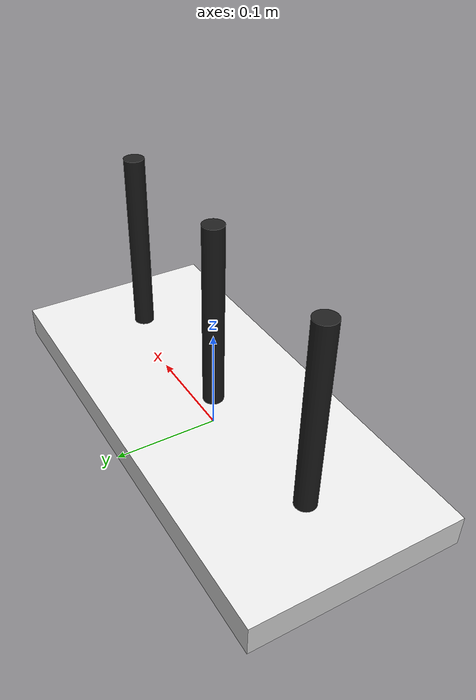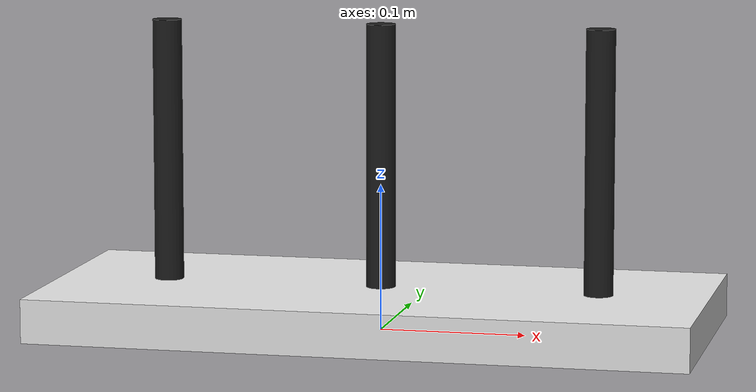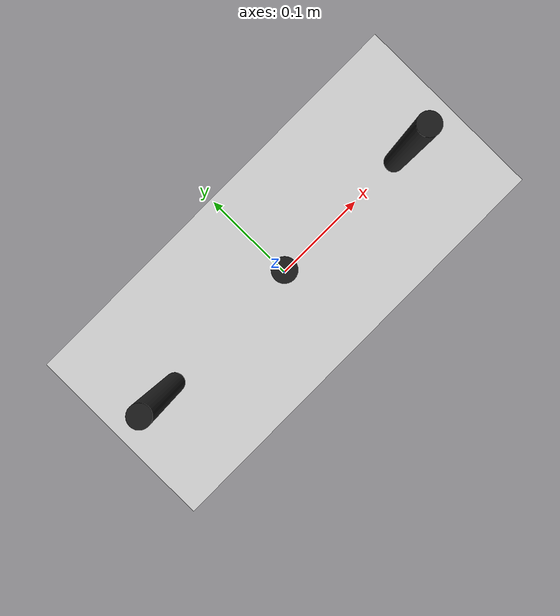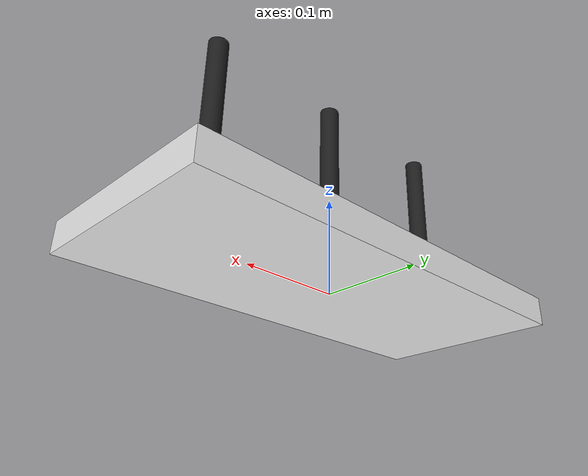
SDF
<?xml version="1.0" encoding="utf-8"?>
<!-- |    This document was autogenerated by xacro from model.xacro                    | -->
<!-- |    EDITING THIS FILE BY HAND IS NOT RECOMMENDED                                 | -->
<sdf version="1.4" xmlns:xacro="http://www.ros.org/wiki/xacro">
  <model name="hanoi_rod_support">
    <static>true</static>
    <!-- thus, inertia is not required -->
    <link name="link">
      <collision name="base">
        <pose>0 0 0.015 0 0 0</pose>
        <geometry>
          <box>
            <size>0.45 0.2 0.03</size>
          </box>
        </geometry>
        <surface>
          <friction>
            <ode>
              <mu>1</mu>
              <mu2>1</mu2>
            </ode>
            <torsional>
              <ode/>
            </torsional>
          </friction>
          <contact>
            <ode/>
          </contact>
          <bounce/>
        </surface>
      </collision>
      <visual name="base">
        <pose>0 0 0.015 0 0 0</pose>
        <geometry>
          <box>
            <size>0.45 0.2 0.03</size>
          </box>
        </geometry>
        <material>
          <script>
            <name>Gazebo/White</name>
          </script>
        </material>
      </visual>
      <collision name="rod_A">
        <pose>-0.15 0 0.12 0 0 0</pose>
        <geometry>
          <cylinder>
            <radius>0.01</radius>
            <length>0.18</length>
          </cylinder>
        </geometry>
        <max_contacts>10</max_contacts>
      </collision>
      <visual name="rod_A">
        <pose>-0.15 0 0.12 0 0 0</pose>
        <geometry>
          <cylinder>
            <radius>0.01</radius>
            <length>0.18</length>
          </cylinder>
        </geometry>
        <material>
          <script>
            <name>Gazebo/Black</name>
          </script>
        </material>
      </visual>
      <collision name="rod_B">
        <pose>0 0 0.12 0 0 0</pose>
        <geometry>
          <cylinder>
            <radius>0.01</radius>
            <length>0.18</length>
          </cylinder>
        </geometry>
        <max_contacts>10</max_contacts>
      </collision>
      <visual name="rod_B">
        <pose>0 0 0.12 0 0 0</pose>
        <geometry>
          <cylinder>
            <radius>0.01</radius>
            <length>0.18</length>
          </cylinder>
        </geometry>
        <material>
          <script>
            <name>Gazebo/Black</name>
          </script>
        </material>
      </visual>
      <collision name="rod_C">
        <pose>0.15 0 0.12 0 0 0</pose>
        <geometry>
          <cylinder>
            <radius>0.01</radius>
            <length>0.18</length>
          </cylinder>
        </geometry>
        <max_contacts>10</max_contacts>
      </collision>
      <visual name="rod_C">
        <pose>0.15 0 0.12 0 0 0</pose>
        <geometry>
          <cylinder>
            <radius>0.01</radius>
            <length>0.18</length>
          </cylinder>
        </geometry>
        <material>
          <script>
            <name>Gazebo/Black</name>
          </script>
        </material>
      </visual>
    </link>
  </model>
</sdf>
